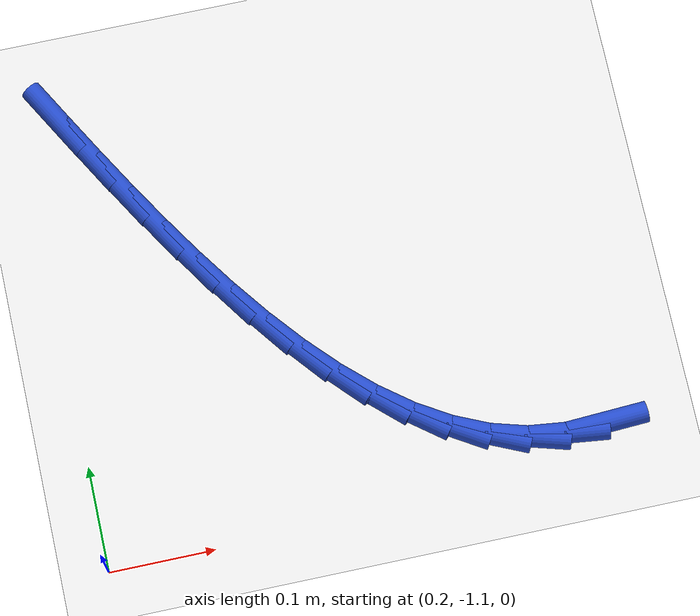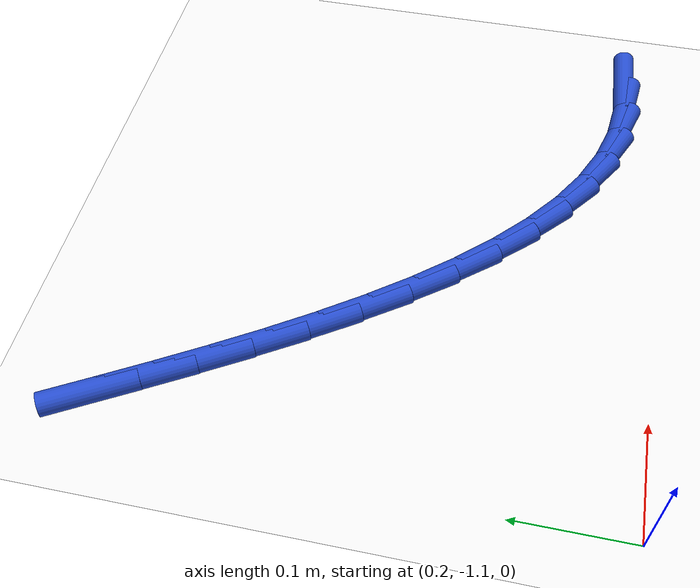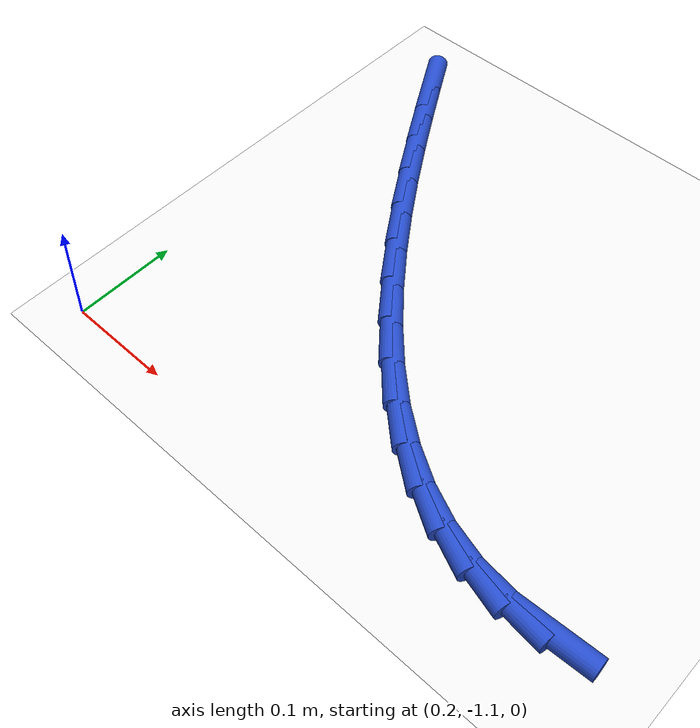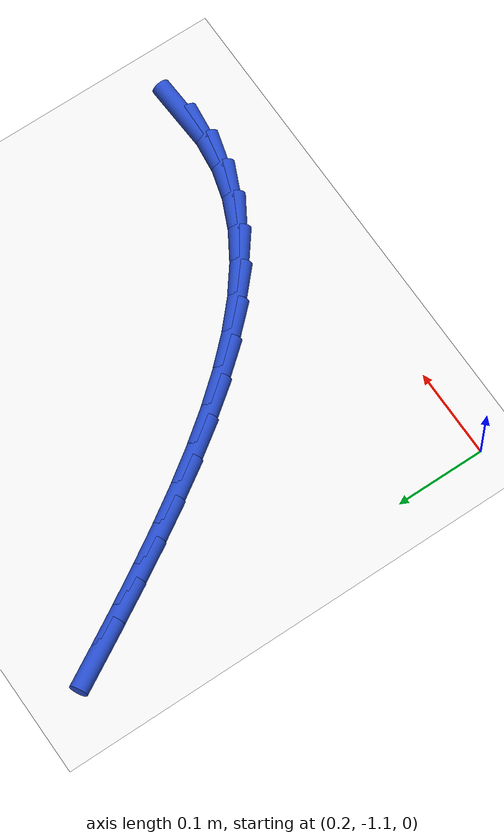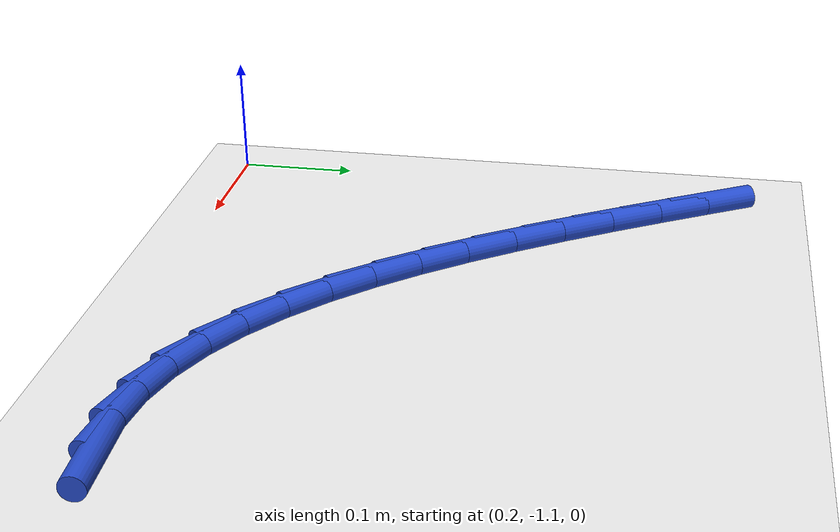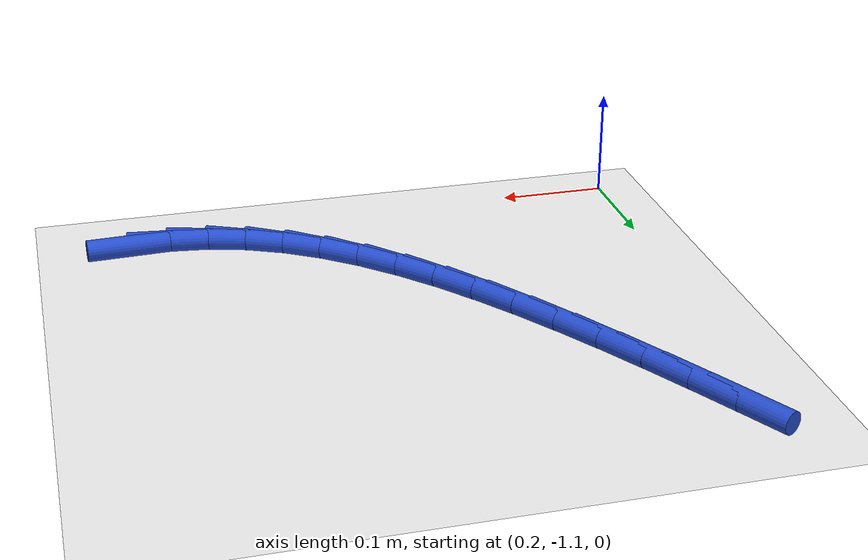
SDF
<sdf version="1.6">
 <world name="default">
  <model name="ground_plane">
   <static>1</static>
   <link name="link">
    <collision name="collision">
     <geometry><plane><normal>0 0 1</normal><size>100 100</size></plane></geometry>
     <surface><friction><ode><mu>100</mu><mu2>50</mu2></ode></friction></surface>
    </collision>
    <visual name="visual">
     <cast_shadows>0</cast_shadows>
     <geometry><plane><normal>0 0 1</normal><size>100 100</size></plane></geometry>
     <material>
      <script><uri>file://media/materials/scripts/gazebo.material</uri><name>Gazebo/WhiteGlow</name></script>
     </material>
    </visual>
   </link>
  </model>
  <model name="line">
   <link name="link_167">
    <pose>0.6758926420906085 -1.0605613536197767 0.01 0 1.57 0.050661995275291596</pose>
    <collision name="collision">
     <geometry><cylinder><radius>0.01</radius><length>0.08</length></cylinder></geometry>
    </collision>
    <visual name="visual">
     <material>
      <script><name>Gazebo/Blue</name><uri>file://media/materials/scripts/gazebo.material</uri></script>
     </material>
     <geometry><cylinder><radius>0.01</radius><length>0.08</length></cylinder></geometry>
    </visual>
   </link>
   <link name="link_168">
    <pose>0.6387568570160953 -1.0624443378429596 0.01 0 1.57 -0.11783199639658813</pose>
    <collision name="collision">
     <geometry><cylinder><radius>0.01</radius><length>0.08</length></cylinder></geometry>
    </collision>
    <visual name="visual">
     <material>
      <script><name>Gazebo/Blue</name><uri>file://media/materials/scripts/gazebo.material</uri></script>
     </material>
     <geometry><cylinder><radius>0.01</radius><length>0.08</length></cylinder></geometry>
    </visual>
   </link>
   <link name="link_169">
    <pose>0.6029176054397128 -1.0582016734939648 0.01 0 1.57 -0.27838440445694096</pose>
    <collision name="collision">
     <geometry><cylinder><radius>0.01</radius><length>0.08</length></cylinder></geometry>
    </collision>
    <visual name="visual">
     <material>
      <script><name>Gazebo/Blue</name><uri>file://media/materials/scripts/gazebo.material</uri></script>
     </material>
     <geometry><cylinder><radius>0.01</radius><length>0.08</length></cylinder></geometry>
    </visual>
   </link>
   <link name="link_170">
    <pose>0.5683311609513783 -1.048316661822059 0.01 0 1.57 -0.423457804712237</pose>
    <collision name="collision">
     <geometry><cylinder><radius>0.01</radius><length>0.08</length></cylinder></geometry>
    </collision>
    <visual name="visual">
     <material>
      <script><name>Gazebo/Blue</name><uri>file://media/materials/scripts/gazebo.material</uri></script>
     </material>
     <geometry><cylinder><radius>0.01</radius><length>0.08</length></cylinder></geometry>
    </visual>
   </link>
   <link name="link_171">
    <pose>0.5349537971410088 -1.033272604076509 0.01 0 1.57 -0.5493330280564402</pose>
    <collision name="collision">
     <geometry><cylinder><radius>0.01</radius><length>0.08</length></cylinder></geometry>
    </collision>
    <visual name="visual">
     <material>
      <script><name>Gazebo/Blue</name><uri>file://media/materials/scripts/gazebo.material</uri></script>
     </material>
     <geometry><cylinder><radius>0.01</radius><length>0.08</length></cylinder></geometry>
    </visual>
   </link>
   <link name="link_172">
    <pose>0.5027417875985213 -1.013552801506582 0.01 0 1.57 -0.6556262695805101</pose>
    <collision name="collision">
     <geometry><cylinder><radius>0.01</radius><length>0.08</length></cylinder></geometry>
    </collision>
    <visual name="visual">
     <material>
      <script><name>Gazebo/Blue</name><uri>file://media/materials/scripts/gazebo.material</uri></script>
     </material>
     <geometry><cylinder><radius>0.01</radius><length>0.08</length></cylinder></geometry>
    </visual>
   </link>
   <link name="link_173">
    <pose>0.4716514059138332 -0.9896405553615452 0.01 0 1.57 -0.7439343268036555</pose>
    <collision name="collision">
     <geometry><cylinder><radius>0.01</radius><length>0.08</length></cylinder></geometry>
    </collision>
    <visual name="visual">
     <material>
      <script><name>Gazebo/Blue</name><uri>file://media/materials/scripts/gazebo.material</uri></script>
     </material>
     <geometry><cylinder><radius>0.01</radius><length>0.08</length></cylinder></geometry>
    </visual>
   </link>
   <link name="link_174">
    <pose>0.44163892567686114 -0.9620191668906644 0.01 0 1.57 -0.8166275831386124</pose>
    <collision name="collision">
     <geometry><cylinder><radius>0.01</radius><length>0.08</length></cylinder></geometry>
    </collision>
    <visual name="visual">
     <material>
      <script><name>Gazebo/Blue</name><uri>file://media/materials/scripts/gazebo.material</uri></script>
     </material>
     <geometry><cylinder><radius>0.01</radius><length>0.08</length></cylinder></geometry>
    </visual>
   </link>
   <link name="link_175">
    <pose>0.41266062047752233 -0.9311719373432075 0.01 0 1.57 -0.8761216196992362</pose>
    <collision name="collision">
     <geometry><cylinder><radius>0.01</radius><length>0.08</length></cylinder></geometry>
    </collision>
    <visual name="visual">
     <material>
      <script><name>Gazebo/Blue</name><uri>file://media/materials/scripts/gazebo.material</uri></script>
     </material>
     <geometry><cylinder><radius>0.01</radius><length>0.08</length></cylinder></geometry>
    </visual>
   </link>
   <link name="link_176">
    <pose>0.38467276390573407 -0.8975821679684413 0.01 0 1.57 -0.9245448458472726</pose>
    <collision name="collision">
     <geometry><cylinder><radius>0.01</radius><length>0.08</length></cylinder></geometry>
    </collision>
    <visual name="visual">
     <material>
      <script><name>Gazebo/Blue</name><uri>file://media/materials/scripts/gazebo.material</uri></script>
     </material>
     <geometry><cylinder><radius>0.01</radius><length>0.08</length></cylinder></geometry>
    </visual>
   </link>
   <link name="link_177">
    <pose>0.35763162955141325 -0.8617331600156325 0.01 0 1.57 -0.963634676649891</pose>
    <collision name="collision">
     <geometry><cylinder><radius>0.01</radius><length>0.08</length></cylinder></geometry>
    </collision>
    <visual name="visual">
     <material>
      <script><name>Gazebo/Blue</name><uri>file://media/materials/scripts/gazebo.material</uri></script>
     </material>
     <geometry><cylinder><radius>0.01</radius><length>0.08</length></cylinder></geometry>
    </visual>
   </link>
   <link name="link_178">
    <pose>0.3314934910044771 -0.8241082147340487 0.01 0 1.57 -0.9947383437914465</pose>
    <collision name="collision">
     <geometry><cylinder><radius>0.01</radius><length>0.08</length></cylinder></geometry>
    </collision>
    <visual name="visual">
     <material>
      <script><name>Gazebo/Blue</name><uri>file://media/materials/scripts/gazebo.material</uri></script>
     </material>
     <geometry><cylinder><radius>0.01</radius><length>0.08</length></cylinder></geometry>
    </visual>
   </link>
   <link name="link_179">
    <pose>0.3062146218548424 -0.7851906333729557 0.01 0 1.57 -1.0188493992106646</pose>
    <collision name="collision">
     <geometry><cylinder><radius>0.01</radius><length>0.08</length></cylinder></geometry>
    </collision>
    <visual name="visual">
     <material>
      <script><name>Gazebo/Blue</name><uri>file://media/materials/scripts/gazebo.material</uri></script>
     </material>
     <geometry><cylinder><radius>0.01</radius><length>0.08</length></cylinder></geometry>
    </visual>
   </link>
   <link name="link_180">
    <pose>0.2817512956924264 -0.7454637171816213 0.01 0 1.57 -1.036646759545141</pose>
    <collision name="collision">
     <geometry><cylinder><radius>0.01</radius><length>0.08</length></cylinder></geometry>
    </collision>
    <visual name="visual">
     <material>
      <script><name>Gazebo/Blue</name><uri>file://media/materials/scripts/gazebo.material</uri></script>
     </material>
     <geometry><cylinder><radius>0.01</radius><length>0.08</length></cylinder></geometry>
    </visual>
   </link>
   <link name="link_181">
    <pose>0.2580597861071462 -0.705410767409312 0.01 0 1.57 -1.048521324533821</pose>
    <collision name="collision">
     <geometry><cylinder><radius>0.01</radius><length>0.08</length></cylinder></geometry>
    </collision>
    <visual name="visual">
     <material>
      <script><name>Gazebo/Blue</name><uri>file://media/materials/scripts/gazebo.material</uri></script>
     </material>
     <geometry><cylinder><radius>0.01</radius><length>0.08</length></cylinder></geometry>
    </visual>
   </link>
   <link name="link_182">
    <pose>0.23509636668891887 -0.665515085305295 0.01 0 1.57 -1.05458248556393</pose>
    <collision name="collision">
     <geometry><cylinder><radius>0.01</radius><length>0.08</length></cylinder></geometry>
    </collision>
    <visual name="visual">
     <material>
      <script><name>Gazebo/Blue</name><uri>file://media/materials/scripts/gazebo.material</uri></script>
     </material>
     <geometry><cylinder><radius>0.01</radius><length>0.08</length></cylinder></geometry>
    </visual>
   </link>
  </model>
 </world>
</sdf>
